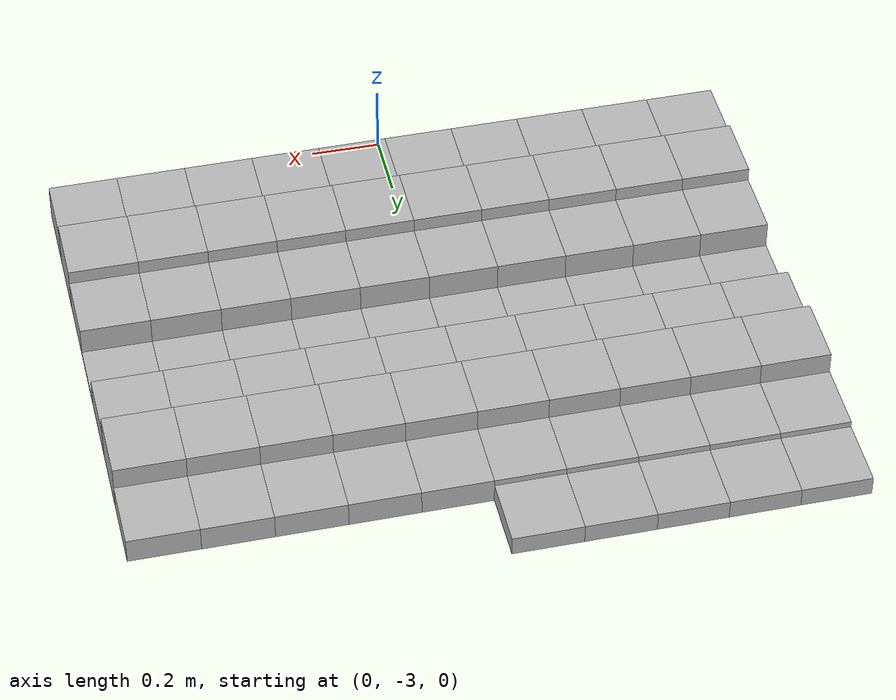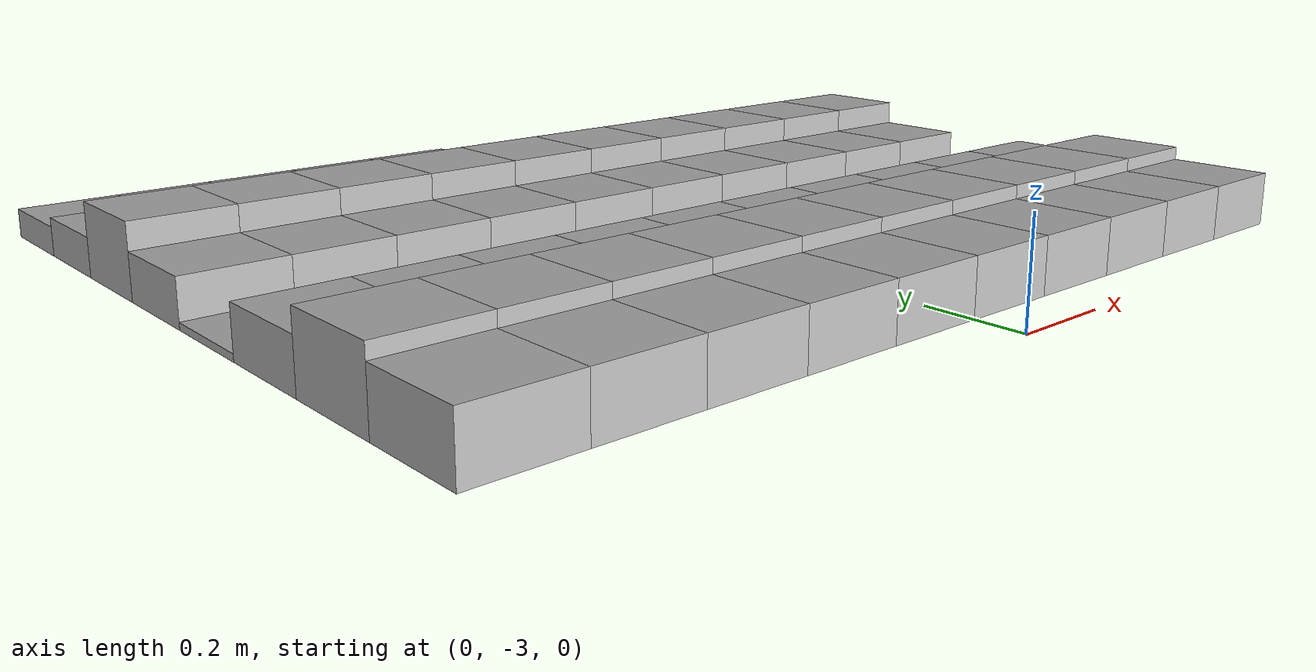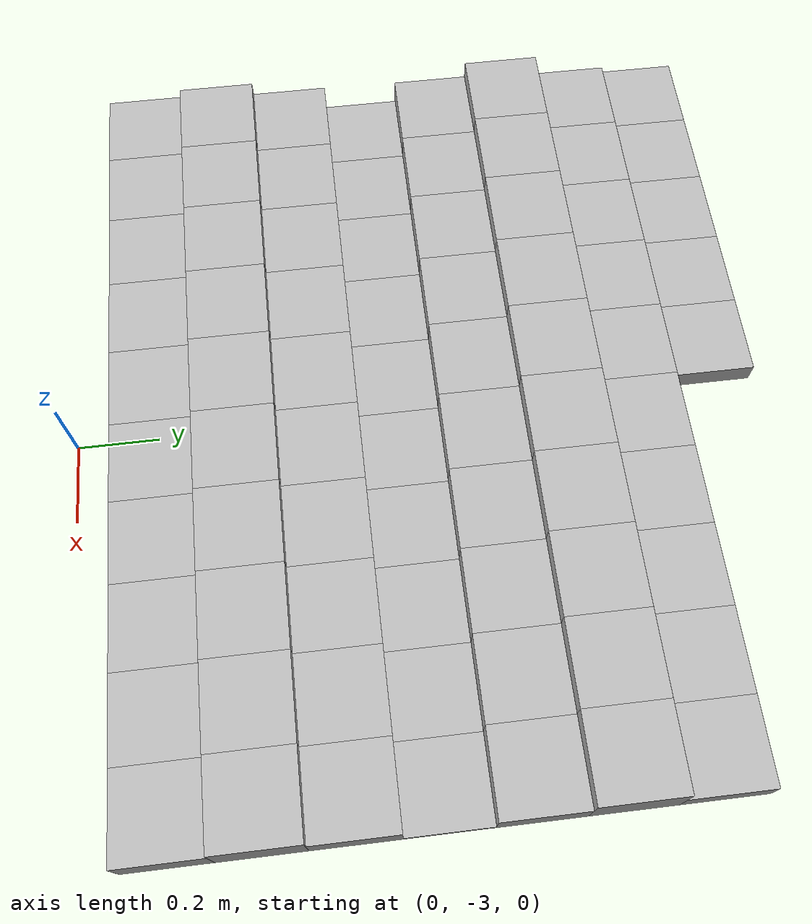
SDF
<sdf version="1.6">
 <model name="Terrain">
  <static>true</static>
  <link name="box_7_0">
   <pose>-0.9 -1.4 0.0288530156352 0 0 0</pose>
   <inertial>
    <mass>1.0</mass>
    <inertia><ixx>0.0</ixx><ixy>0.0</ixy><ixz>0.0</ixz><iyy>0.0</iyy><iyz>0.0</iyz><izz>0.0</izz></inertia>
   </inertial>
   <collision name="collision"><geometry><box><size>0.2 0.2 0.0577060312703</size></box></geometry></collision>
   <visual name="visual"><geometry><box><size>0.2 0.2 0.0577060312703</size></box></geometry></visual>
  </link>
  <link name="box_7_1">
   <pose>-0.7 -1.4 0.0288530156352 0 0 0</pose>
   <inertial>
    <mass>1.0</mass>
    <inertia><ixx>0.0</ixx><ixy>0.0</ixy><ixz>0.0</ixz><iyy>0.0</iyy><iyz>0.0</iyz><izz>0.0</izz></inertia>
   </inertial>
   <collision name="collision"><geometry><box><size>0.2 0.2 0.0577060312703</size></box></geometry></collision>
   <visual name="visual"><geometry><box><size>0.2 0.2 0.0577060312703</size></box></geometry></visual>
  </link>
  <link name="box_7_2">
   <pose>-0.5 -1.4 0.0288530156352 0 0 0</pose>
   <inertial>
    <mass>1.0</mass>
    <inertia><ixx>0.0</ixx><ixy>0.0</ixy><ixz>0.0</ixz><iyy>0.0</iyy><iyz>0.0</iyz><izz>0.0</izz></inertia>
   </inertial>
   <collision name="collision"><geometry><box><size>0.2 0.2 0.0577060312703</size></box></geometry></collision>
   <visual name="visual"><geometry><box><size>0.2 0.2 0.0577060312703</size></box></geometry></visual>
  </link>
  <link name="box_7_3">
   <pose>-0.3 -1.4 0.0288530156352 0 0 0</pose>
   <inertial>
    <mass>1.0</mass>
    <inertia><ixx>0.0</ixx><ixy>0.0</ixy><ixz>0.0</ixz><iyy>0.0</iyy><iyz>0.0</iyz><izz>0.0</izz></inertia>
   </inertial>
   <collision name="collision"><geometry><box><size>0.2 0.2 0.0577060312703</size></box></geometry></collision>
   <visual name="visual"><geometry><box><size>0.2 0.2 0.0577060312703</size></box></geometry></visual>
  </link>
  <link name="box_7_4">
   <pose>-0.1 -1.4 0.0288530156352 0 0 0</pose>
   <inertial>
    <mass>1.0</mass>
    <inertia><ixx>0.0</ixx><ixy>0.0</ixy><ixz>0.0</ixz><iyy>0.0</iyy><iyz>0.0</iyz><izz>0.0</izz></inertia>
   </inertial>
   <collision name="collision"><geometry><box><size>0.2 0.2 0.0577060312703</size></box></geometry></collision>
   <visual name="visual"><geometry><box><size>0.2 0.2 0.0577060312703</size></box></geometry></visual>
  </link>
  <link name="box_8_0">
   <pose>-0.9 -1.6 0.0380230738048 0 0 0</pose>
   <inertial>
    <mass>1.0</mass>
    <inertia><ixx>0.0</ixx><ixy>0.0</ixy><ixz>0.0</ixz><iyy>0.0</iyy><iyz>0.0</iyz><izz>0.0</izz></inertia>
   </inertial>
   <collision name="collision"><geometry><box><size>0.2 0.2 0.0760461476095</size></box></geometry></collision>
   <visual name="visual"><geometry><box><size>0.2 0.2 0.0760461476095</size></box></geometry></visual>
  </link>
  <link name="box_8_1">
   <pose>-0.7 -1.6 0.0380230738048 0 0 0</pose>
   <inertial>
    <mass>1.0</mass>
    <inertia><ixx>0.0</ixx><ixy>0.0</ixy><ixz>0.0</ixz><iyy>0.0</iyy><iyz>0.0</iyz><izz>0.0</izz></inertia>
   </inertial>
   <collision name="collision"><geometry><box><size>0.2 0.2 0.0760461476095</size></box></geometry></collision>
   <visual name="visual"><geometry><box><size>0.2 0.2 0.0760461476095</size></box></geometry></visual>
  </link>
  <link name="box_8_2">
   <pose>-0.5 -1.6 0.0380230738048 0 0 0</pose>
   <inertial>
    <mass>1.0</mass>
    <inertia><ixx>0.0</ixx><ixy>0.0</ixy><ixz>0.0</ixz><iyy>0.0</iyy><iyz>0.0</iyz><izz>0.0</izz></inertia>
   </inertial>
   <collision name="collision"><geometry><box><size>0.2 0.2 0.0760461476095</size></box></geometry></collision>
   <visual name="visual"><geometry><box><size>0.2 0.2 0.0760461476095</size></box></geometry></visual>
  </link>
  <link name="box_8_3">
   <pose>-0.3 -1.6 0.0380230738048 0 0 0</pose>
   <inertial>
    <mass>1.0</mass>
    <inertia><ixx>0.0</ixx><ixy>0.0</ixy><ixz>0.0</ixz><iyy>0.0</iyy><iyz>0.0</iyz><izz>0.0</izz></inertia>
   </inertial>
   <collision name="collision"><geometry><box><size>0.2 0.2 0.0760461476095</size></box></geometry></collision>
   <visual name="visual"><geometry><box><size>0.2 0.2 0.0760461476095</size></box></geometry></visual>
  </link>
  <link name="box_8_4">
   <pose>-0.1 -1.6 0.0380230738048 0 0 0</pose>
   <inertial>
    <mass>1.0</mass>
    <inertia><ixx>0.0</ixx><ixy>0.0</ixy><ixz>0.0</ixz><iyy>0.0</iyy><iyz>0.0</iyz><izz>0.0</izz></inertia>
   </inertial>
   <collision name="collision"><geometry><box><size>0.2 0.2 0.0760461476095</size></box></geometry></collision>
   <visual name="visual"><geometry><box><size>0.2 0.2 0.0760461476095</size></box></geometry></visual>
  </link>
  <link name="box_8_5">
   <pose>0.1 -1.6 0.0380230738048 0 0 0</pose>
   <inertial>
    <mass>1.0</mass>
    <inertia><ixx>0.0</ixx><ixy>0.0</ixy><ixz>0.0</ixz><iyy>0.0</iyy><iyz>0.0</iyz><izz>0.0</izz></inertia>
   </inertial>
   <collision name="collision"><geometry><box><size>0.2 0.2 0.0760461476095</size></box></geometry></collision>
   <visual name="visual"><geometry><box><size>0.2 0.2 0.0760461476095</size></box></geometry></visual>
  </link>
  <link name="box_8_6">
   <pose>0.3 -1.6 0.0380230738048 0 0 0</pose>
   <inertial>
    <mass>1.0</mass>
    <inertia><ixx>0.0</ixx><ixy>0.0</ixy><ixz>0.0</ixz><iyy>0.0</iyy><iyz>0.0</iyz><izz>0.0</izz></inertia>
   </inertial>
   <collision name="collision"><geometry><box><size>0.2 0.2 0.0760461476095</size></box></geometry></collision>
   <visual name="visual"><geometry><box><size>0.2 0.2 0.0760461476095</size></box></geometry></visual>
  </link>
  <link name="box_8_7">
   <pose>0.5 -1.6 0.0380230738048 0 0 0</pose>
   <inertial>
    <mass>1.0</mass>
    <inertia><ixx>0.0</ixx><ixy>0.0</ixy><ixz>0.0</ixz><iyy>0.0</iyy><iyz>0.0</iyz><izz>0.0</izz></inertia>
   </inertial>
   <collision name="collision"><geometry><box><size>0.2 0.2 0.0760461476095</size></box></geometry></collision>
   <visual name="visual"><geometry><box><size>0.2 0.2 0.0760461476095</size></box></geometry></visual>
  </link>
  <link name="box_8_8">
   <pose>0.7 -1.6 0.0380230738048 0 0 0</pose>
   <inertial>
    <mass>1.0</mass>
    <inertia><ixx>0.0</ixx><ixy>0.0</ixy><ixz>0.0</ixz><iyy>0.0</iyy><iyz>0.0</iyz><izz>0.0</izz></inertia>
   </inertial>
   <collision name="collision"><geometry><box><size>0.2 0.2 0.0760461476095</size></box></geometry></collision>
   <visual name="visual"><geometry><box><size>0.2 0.2 0.0760461476095</size></box></geometry></visual>
  </link>
  <link name="box_8_9">
   <pose>0.9 -1.6 0.0380230738048 0 0 0</pose>
   <inertial>
    <mass>1.0</mass>
    <inertia><ixx>0.0</ixx><ixy>0.0</ixy><ixz>0.0</ixz><iyy>0.0</iyy><iyz>0.0</iyz><izz>0.0</izz></inertia>
   </inertial>
   <collision name="collision"><geometry><box><size>0.2 0.2 0.0760461476095</size></box></geometry></collision>
   <visual name="visual"><geometry><box><size>0.2 0.2 0.0760461476095</size></box></geometry></visual>
  </link>
  <link name="box_9_0">
   <pose>-0.9 -1.8 0.0711643060748 0 0 0</pose>
   <inertial>
    <mass>1.0</mass>
    <inertia><ixx>0.0</ixx><ixy>0.0</ixy><ixz>0.0</ixz><iyy>0.0</iyy><iyz>0.0</iyz><izz>0.0</izz></inertia>
   </inertial>
   <collision name="collision"><geometry><box><size>0.2 0.2 0.14232861215</size></box></geometry></collision>
   <visual name="visual"><geometry><box><size>0.2 0.2 0.14232861215</size></box></geometry></visual>
  </link>
  <link name="box_9_1">
   <pose>-0.7 -1.8 0.0711643060748 0 0 0</pose>
   <inertial>
    <mass>1.0</mass>
    <inertia><ixx>0.0</ixx><ixy>0.0</ixy><ixz>0.0</ixz><iyy>0.0</iyy><iyz>0.0</iyz><izz>0.0</izz></inertia>
   </inertial>
   <collision name="collision"><geometry><box><size>0.2 0.2 0.14232861215</size></box></geometry></collision>
   <visual name="visual"><geometry><box><size>0.2 0.2 0.14232861215</size></box></geometry></visual>
  </link>
  <link name="box_9_2">
   <pose>-0.5 -1.8 0.0711643060748 0 0 0</pose>
   <inertial>
    <mass>1.0</mass>
    <inertia><ixx>0.0</ixx><ixy>0.0</ixy><ixz>0.0</ixz><iyy>0.0</iyy><iyz>0.0</iyz><izz>0.0</izz></inertia>
   </inertial>
   <collision name="collision"><geometry><box><size>0.2 0.2 0.14232861215</size></box></geometry></collision>
   <visual name="visual"><geometry><box><size>0.2 0.2 0.14232861215</size></box></geometry></visual>
  </link>
  <link name="box_9_3">
   <pose>-0.3 -1.8 0.0711643060748 0 0 0</pose>
   <inertial>
    <mass>1.0</mass>
    <inertia><ixx>0.0</ixx><ixy>0.0</ixy><ixz>0.0</ixz><iyy>0.0</iyy><iyz>0.0</iyz><izz>0.0</izz></inertia>
   </inertial>
   <collision name="collision"><geometry><box><size>0.2 0.2 0.14232861215</size></box></geometry></collision>
   <visual name="visual"><geometry><box><size>0.2 0.2 0.14232861215</size></box></geometry></visual>
  </link>
  <link name="box_9_4">
   <pose>-0.1 -1.8 0.0711643060748 0 0 0</pose>
   <inertial>
    <mass>1.0</mass>
    <inertia><ixx>0.0</ixx><ixy>0.0</ixy><ixz>0.0</ixz><iyy>0.0</iyy><iyz>0.0</iyz><izz>0.0</izz></inertia>
   </inertial>
   <collision name="collision"><geometry><box><size>0.2 0.2 0.14232861215</size></box></geometry></collision>
   <visual name="visual"><geometry><box><size>0.2 0.2 0.14232861215</size></box></geometry></visual>
  </link>
  <link name="box_9_5">
   <pose>0.1 -1.8 0.0711643060748 0 0 0</pose>
   <inertial>
    <mass>1.0</mass>
    <inertia><ixx>0.0</ixx><ixy>0.0</ixy><ixz>0.0</ixz><iyy>0.0</iyy><iyz>0.0</iyz><izz>0.0</izz></inertia>
   </inertial>
   <collision name="collision"><geometry><box><size>0.2 0.2 0.14232861215</size></box></geometry></collision>
   <visual name="visual"><geometry><box><size>0.2 0.2 0.14232861215</size></box></geometry></visual>
  </link>
  <link name="box_9_6">
   <pose>0.3 -1.8 0.0711643060748 0 0 0</pose>
   <inertial>
    <mass>1.0</mass>
    <inertia><ixx>0.0</ixx><ixy>0.0</ixy><ixz>0.0</ixz><iyy>0.0</iyy><iyz>0.0</iyz><izz>0.0</izz></inertia>
   </inertial>
   <collision name="collision"><geometry><box><size>0.2 0.2 0.14232861215</size></box></geometry></collision>
   <visual name="visual"><geometry><box><size>0.2 0.2 0.14232861215</size></box></geometry></visual>
  </link>
  <link name="box_9_7">
   <pose>0.5 -1.8 0.0711643060748 0 0 0</pose>
   <inertial>
    <mass>1.0</mass>
    <inertia><ixx>0.0</ixx><ixy>0.0</ixy><ixz>0.0</ixz><iyy>0.0</iyy><iyz>0.0</iyz><izz>0.0</izz></inertia>
   </inertial>
   <collision name="collision"><geometry><box><size>0.2 0.2 0.14232861215</size></box></geometry></collision>
   <visual name="visual"><geometry><box><size>0.2 0.2 0.14232861215</size></box></geometry></visual>
  </link>
  <link name="box_9_8">
   <pose>0.7 -1.8 0.0711643060748 0 0 0</pose>
   <inertial>
    <mass>1.0</mass>
    <inertia><ixx>0.0</ixx><ixy>0.0</ixy><ixz>0.0</ixz><iyy>0.0</iyy><iyz>0.0</iyz><izz>0.0</izz></inertia>
   </inertial>
   <collision name="collision"><geometry><box><size>0.2 0.2 0.14232861215</size></box></geometry></collision>
   <visual name="visual"><geometry><box><size>0.2 0.2 0.14232861215</size></box></geometry></visual>
  </link>
  <link name="box_9_9">
   <pose>0.9 -1.8 0.0711643060748 0 0 0</pose>
   <inertial>
    <mass>1.0</mass>
    <inertia><ixx>0.0</ixx><ixy>0.0</ixy><ixz>0.0</ixz><iyy>0.0</iyy><iyz>0.0</iyz><izz>0.0</izz></inertia>
   </inertial>
   <collision name="collision"><geometry><box><size>0.2 0.2 0.14232861215</size></box></geometry></collision>
   <visual name="visual"><geometry><box><size>0.2 0.2 0.14232861215</size></box></geometry></visual>
  </link>
  <link name="box_10_0">
   <pose>-0.9 -2.0 0.0448267255132 0 0 0</pose>
   <inertial>
    <mass>1.0</mass>
    <inertia><ixx>0.0</ixx><ixy>0.0</ixy><ixz>0.0</ixz><iyy>0.0</iyy><iyz>0.0</iyz><izz>0.0</izz></inertia>
   </inertial>
   <collision name="collision"><geometry><box><size>0.2 0.2 0.0896534510264</size></box></geometry></collision>
   <visual name="visual"><geometry><box><size>0.2 0.2 0.0896534510264</size></box></geometry></visual>
  </link>
  <link name="box_10_1">
   <pose>-0.7 -2.0 0.0448267255132 0 0 0</pose>
   <inertial>
    <mass>1.0</mass>
    <inertia><ixx>0.0</ixx><ixy>0.0</ixy><ixz>0.0</ixz><iyy>0.0</iyy><iyz>0.0</iyz><izz>0.0</izz></inertia>
   </inertial>
   <collision name="collision"><geometry><box><size>0.2 0.2 0.0896534510264</size></box></geometry></collision>
   <visual name="visual"><geometry><box><size>0.2 0.2 0.0896534510264</size></box></geometry></visual>
  </link>
  <link name="box_10_2">
   <pose>-0.5 -2.0 0.0448267255132 0 0 0</pose>
   <inertial>
    <mass>1.0</mass>
    <inertia><ixx>0.0</ixx><ixy>0.0</ixy><ixz>0.0</ixz><iyy>0.0</iyy><iyz>0.0</iyz><izz>0.0</izz></inertia>
   </inertial>
   <collision name="collision"><geometry><box><size>0.2 0.2 0.0896534510264</size></box></geometry></collision>
   <visual name="visual"><geometry><box><size>0.2 0.2 0.0896534510264</size></box></geometry></visual>
  </link>
  <link name="box_10_3">
   <pose>-0.3 -2.0 0.0448267255132 0 0 0</pose>
   <inertial>
    <mass>1.0</mass>
    <inertia><ixx>0.0</ixx><ixy>0.0</ixy><ixz>0.0</ixz><iyy>0.0</iyy><iyz>0.0</iyz><izz>0.0</izz></inertia>
   </inertial>
   <collision name="collision"><geometry><box><size>0.2 0.2 0.0896534510264</size></box></geometry></collision>
   <visual name="visual"><geometry><box><size>0.2 0.2 0.0896534510264</size></box></geometry></visual>
  </link>
  <link name="box_10_4">
   <pose>-0.1 -2.0 0.0448267255132 0 0 0</pose>
   <inertial>
    <mass>1.0</mass>
    <inertia><ixx>0.0</ixx><ixy>0.0</ixy><ixz>0.0</ixz><iyy>0.0</iyy><iyz>0.0</iyz><izz>0.0</izz></inertia>
   </inertial>
   <collision name="collision"><geometry><box><size>0.2 0.2 0.0896534510264</size></box></geometry></collision>
   <visual name="visual"><geometry><box><size>0.2 0.2 0.0896534510264</size></box></geometry></visual>
  </link>
  <link name="box_10_5">
   <pose>0.1 -2.0 0.0448267255132 0 0 0</pose>
   <inertial>
    <mass>1.0</mass>
    <inertia><ixx>0.0</ixx><ixy>0.0</ixy><ixz>0.0</ixz><iyy>0.0</iyy><iyz>0.0</iyz><izz>0.0</izz></inertia>
   </inertial>
   <collision name="collision"><geometry><box><size>0.2 0.2 0.0896534510264</size></box></geometry></collision>
   <visual name="visual"><geometry><box><size>0.2 0.2 0.0896534510264</size></box></geometry></visual>
  </link>
  <link name="box_10_6">
   <pose>0.3 -2.0 0.0448267255132 0 0 0</pose>
   <inertial>
    <mass>1.0</mass>
    <inertia><ixx>0.0</ixx><ixy>0.0</ixy><ixz>0.0</ixz><iyy>0.0</iyy><iyz>0.0</iyz><izz>0.0</izz></inertia>
   </inertial>
   <collision name="collision"><geometry><box><size>0.2 0.2 0.0896534510264</size></box></geometry></collision>
   <visual name="visual"><geometry><box><size>0.2 0.2 0.0896534510264</size></box></geometry></visual>
  </link>
  <link name="box_10_7">
   <pose>0.5 -2.0 0.0448267255132 0 0 0</pose>
   <inertial>
    <mass>1.0</mass>
    <inertia><ixx>0.0</ixx><ixy>0.0</ixy><ixz>0.0</ixz><iyy>0.0</iyy><iyz>0.0</iyz><izz>0.0</izz></inertia>
   </inertial>
   <collision name="collision"><geometry><box><size>0.2 0.2 0.0896534510264</size></box></geometry></collision>
   <visual name="visual"><geometry><box><size>0.2 0.2 0.0896534510264</size></box></geometry></visual>
  </link>
  <link name="box_10_8">
   <pose>0.7 -2.0 0.0448267255132 0 0 0</pose>
   <inertial>
    <mass>1.0</mass>
    <inertia><ixx>0.0</ixx><ixy>0.0</ixy><ixz>0.0</ixz><iyy>0.0</iyy><iyz>0.0</iyz><izz>0.0</izz></inertia>
   </inertial>
   <collision name="collision"><geometry><box><size>0.2 0.2 0.0896534510264</size></box></geometry></collision>
   <visual name="visual"><geometry><box><size>0.2 0.2 0.0896534510264</size></box></geometry></visual>
  </link>
  <link name="box_10_9">
   <pose>0.9 -2.0 0.0448267255132 0 0 0</pose>
   <inertial>
    <mass>1.0</mass>
    <inertia><ixx>0.0</ixx><ixy>0.0</ixy><ixz>0.0</ixz><iyy>0.0</iyy><iyz>0.0</iyz><izz>0.0</izz></inertia>
   </inertial>
   <collision name="collision"><geometry><box><size>0.2 0.2 0.0896534510264</size></box></geometry></collision>
   <visual name="visual"><geometry><box><size>0.2 0.2 0.0896534510264</size></box></geometry></visual>
  </link>
  <link name="box_11_0">
   <pose>-0.9 -2.2 0.00673364602555 0 0 0</pose>
   <inertial>
    <mass>1.0</mass>
    <inertia><ixx>0.0</ixx><ixy>0.0</ixy><ixz>0.0</ixz><iyy>0.0</iyy><iyz>0.0</iyz><izz>0.0</izz></inertia>
   </inertial>
   <collision name="collision"><geometry><box><size>0.2 0.2 0.0134672920511</size></box></geometry></collision>
   <visual name="visual"><geometry><box><size>0.2 0.2 0.0134672920511</size></box></geometry></visual>
  </link>
  <link name="box_11_1">
   <pose>-0.7 -2.2 0.00673364602555 0 0 0</pose>
   <inertial>
    <mass>1.0</mass>
    <inertia><ixx>0.0</ixx><ixy>0.0</ixy><ixz>0.0</ixz><iyy>0.0</iyy><iyz>0.0</iyz><izz>0.0</izz></inertia>
   </inertial>
   <collision name="collision"><geometry><box><size>0.2 0.2 0.0134672920511</size></box></geometry></collision>
   <visual name="visual"><geometry><box><size>0.2 0.2 0.0134672920511</size></box></geometry></visual>
  </link>
  <link name="box_11_2">
   <pose>-0.5 -2.2 0.00673364602555 0 0 0</pose>
   <inertial>
    <mass>1.0</mass>
    <inertia><ixx>0.0</ixx><ixy>0.0</ixy><ixz>0.0</ixz><iyy>0.0</iyy><iyz>0.0</iyz><izz>0.0</izz></inertia>
   </inertial>
   <collision name="collision"><geometry><box><size>0.2 0.2 0.0134672920511</size></box></geometry></collision>
   <visual name="visual"><geometry><box><size>0.2 0.2 0.0134672920511</size></box></geometry></visual>
  </link>
  <link name="box_11_3">
   <pose>-0.3 -2.2 0.00673364602555 0 0 0</pose>
   <inertial>
    <mass>1.0</mass>
    <inertia><ixx>0.0</ixx><ixy>0.0</ixy><ixz>0.0</ixz><iyy>0.0</iyy><iyz>0.0</iyz><izz>0.0</izz></inertia>
   </inertial>
   <collision name="collision"><geometry><box><size>0.2 0.2 0.0134672920511</size></box></geometry></collision>
   <visual name="visual"><geometry><box><size>0.2 0.2 0.0134672920511</size></box></geometry></visual>
  </link>
  <link name="box_11_4">
   <pose>-0.1 -2.2 0.00673364602555 0 0 0</pose>
   <inertial>
    <mass>1.0</mass>
    <inertia><ixx>0.0</ixx><ixy>0.0</ixy><ixz>0.0</ixz><iyy>0.0</iyy><iyz>0.0</iyz><izz>0.0</izz></inertia>
   </inertial>
   <collision name="collision"><geometry><box><size>0.2 0.2 0.0134672920511</size></box></geometry></collision>
   <visual name="visual"><geometry><box><size>0.2 0.2 0.0134672920511</size></box></geometry></visual>
  </link>
  <link name="box_11_5">
   <pose>0.1 -2.2 0.00673364602555 0 0 0</pose>
   <inertial>
    <mass>1.0</mass>
    <inertia><ixx>0.0</ixx><ixy>0.0</ixy><ixz>0.0</ixz><iyy>0.0</iyy><iyz>0.0</iyz><izz>0.0</izz></inertia>
   </inertial>
   <collision name="collision"><geometry><box><size>0.2 0.2 0.0134672920511</size></box></geometry></collision>
   <visual name="visual"><geometry><box><size>0.2 0.2 0.0134672920511</size></box></geometry></visual>
  </link>
  <link name="box_11_6">
   <pose>0.3 -2.2 0.00673364602555 0 0 0</pose>
   <inertial>
    <mass>1.0</mass>
    <inertia><ixx>0.0</ixx><ixy>0.0</ixy><ixz>0.0</ixz><iyy>0.0</iyy><iyz>0.0</iyz><izz>0.0</izz></inertia>
   </inertial>
   <collision name="collision"><geometry><box><size>0.2 0.2 0.0134672920511</size></box></geometry></collision>
   <visual name="visual"><geometry><box><size>0.2 0.2 0.0134672920511</size></box></geometry></visual>
  </link>
  <link name="box_11_7">
   <pose>0.5 -2.2 0.00673364602555 0 0 0</pose>
   <inertial>
    <mass>1.0</mass>
    <inertia><ixx>0.0</ixx><ixy>0.0</ixy><ixz>0.0</ixz><iyy>0.0</iyy><iyz>0.0</iyz><izz>0.0</izz></inertia>
   </inertial>
   <collision name="collision"><geometry><box><size>0.2 0.2 0.0134672920511</size></box></geometry></collision>
   <visual name="visual"><geometry><box><size>0.2 0.2 0.0134672920511</size></box></geometry></visual>
  </link>
  <link name="box_11_8">
   <pose>0.7 -2.2 0.00673364602555 0 0 0</pose>
   <inertial>
    <mass>1.0</mass>
    <inertia><ixx>0.0</ixx><ixy>0.0</ixy><ixz>0.0</ixz><iyy>0.0</iyy><iyz>0.0</iyz><izz>0.0</izz></inertia>
   </inertial>
   <collision name="collision"><geometry><box><size>0.2 0.2 0.0134672920511</size></box></geometry></collision>
   <visual name="visual"><geometry><box><size>0.2 0.2 0.0134672920511</size></box></geometry></visual>
  </link>
  <link name="box_11_9">
   <pose>0.9 -2.2 0.00673364602555 0 0 0</pose>
   <inertial>
    <mass>1.0</mass>
    <inertia><ixx>0.0</ixx><ixy>0.0</ixy><ixz>0.0</ixz><iyy>0.0</iyy><iyz>0.0</iyz><izz>0.0</izz></inertia>
   </inertial>
   <collision name="collision"><geometry><box><size>0.2 0.2 0.0134672920511</size></box></geometry></collision>
   <visual name="visual"><geometry><box><size>0.2 0.2 0.0134672920511</size></box></geometry></visual>
  </link>
  <link name="box_12_0">
   <pose>-0.9 -2.4 0.0473501525472 0 0 0</pose>
   <inertial>
    <mass>1.0</mass>
    <inertia><ixx>0.0</ixx><ixy>0.0</ixy><ixz>0.0</ixz><iyy>0.0</iyy><iyz>0.0</iyz><izz>0.0</izz></inertia>
   </inertial>
   <collision name="collision"><geometry><box><size>0.2 0.2 0.0947003050944</size></box></geometry></collision>
   <visual name="visual"><geometry><box><size>0.2 0.2 0.0947003050944</size></box></geometry></visual>
  </link>
  <link name="box_12_1">
   <pose>-0.7 -2.4 0.0473501525472 0 0 0</pose>
   <inertial>
    <mass>1.0</mass>
    <inertia><ixx>0.0</ixx><ixy>0.0</ixy><ixz>0.0</ixz><iyy>0.0</iyy><iyz>0.0</iyz><izz>0.0</izz></inertia>
   </inertial>
   <collision name="collision"><geometry><box><size>0.2 0.2 0.0947003050944</size></box></geometry></collision>
   <visual name="visual"><geometry><box><size>0.2 0.2 0.0947003050944</size></box></geometry></visual>
  </link>
  <link name="box_12_2">
   <pose>-0.5 -2.4 0.0473501525472 0 0 0</pose>
   <inertial>
    <mass>1.0</mass>
    <inertia><ixx>0.0</ixx><ixy>0.0</ixy><ixz>0.0</ixz><iyy>0.0</iyy><iyz>0.0</iyz><izz>0.0</izz></inertia>
   </inertial>
   <collision name="collision"><geometry><box><size>0.2 0.2 0.0947003050944</size></box></geometry></collision>
   <visual name="visual"><geometry><box><size>0.2 0.2 0.0947003050944</size></box></geometry></visual>
  </link>
  <link name="box_12_3">
   <pose>-0.3 -2.4 0.0473501525472 0 0 0</pose>
   <inertial>
    <mass>1.0</mass>
    <inertia><ixx>0.0</ixx><ixy>0.0</ixy><ixz>0.0</ixz><iyy>0.0</iyy><iyz>0.0</iyz><izz>0.0</izz></inertia>
   </inertial>
   <collision name="collision"><geometry><box><size>0.2 0.2 0.0947003050944</size></box></geometry></collision>
   <visual name="visual"><geometry><box><size>0.2 0.2 0.0947003050944</size></box></geometry></visual>
  </link>
  <link name="box_12_4">
   <pose>-0.1 -2.4 0.0473501525472 0 0 0</pose>
   <inertial>
    <mass>1.0</mass>
    <inertia><ixx>0.0</ixx><ixy>0.0</ixy><ixz>0.0</ixz><iyy>0.0</iyy><iyz>0.0</iyz><izz>0.0</izz></inertia>
   </inertial>
   <collision name="collision"><geometry><box><size>0.2 0.2 0.0947003050944</size></box></geometry></collision>
   <visual name="visual"><geometry><box><size>0.2 0.2 0.0947003050944</size></box></geometry></visual>
  </link>
  <link name="box_12_5">
   <pose>0.1 -2.4 0.0473501525472 0 0 0</pose>
   <inertial>
    <mass>1.0</mass>
    <inertia><ixx>0.0</ixx><ixy>0.0</ixy><ixz>0.0</ixz><iyy>0.0</iyy><iyz>0.0</iyz><izz>0.0</izz></inertia>
   </inertial>
   <collision name="collision"><geometry><box><size>0.2 0.2 0.0947003050944</size></box></geometry></collision>
   <visual name="visual"><geometry><box><size>0.2 0.2 0.0947003050944</size></box></geometry></visual>
  </link>
  <link name="box_12_6">
   <pose>0.3 -2.4 0.0473501525472 0 0 0</pose>
   <inertial>
    <mass>1.0</mass>
    <inertia><ixx>0.0</ixx><ixy>0.0</ixy><ixz>0.0</ixz><iyy>0.0</iyy><iyz>0.0</iyz><izz>0.0</izz></inertia>
   </inertial>
   <collision name="collision"><geometry><box><size>0.2 0.2 0.0947003050944</size></box></geometry></collision>
   <visual name="visual"><geometry><box><size>0.2 0.2 0.0947003050944</size></box></geometry></visual>
  </link>
  <link name="box_12_7">
   <pose>0.5 -2.4 0.0473501525472 0 0 0</pose>
   <inertial>
    <mass>1.0</mass>
    <inertia><ixx>0.0</ixx><ixy>0.0</ixy><ixz>0.0</ixz><iyy>0.0</iyy><iyz>0.0</iyz><izz>0.0</izz></inertia>
   </inertial>
   <collision name="collision"><geometry><box><size>0.2 0.2 0.0947003050944</size></box></geometry></collision>
   <visual name="visual"><geometry><box><size>0.2 0.2 0.0947003050944</size></box></geometry></visual>
  </link>
  <link name="box_12_8">
   <pose>0.7 -2.4 0.0473501525472 0 0 0</pose>
   <inertial>
    <mass>1.0</mass>
    <inertia><ixx>0.0</ixx><ixy>0.0</ixy><ixz>0.0</ixz><iyy>0.0</iyy><iyz>0.0</iyz><izz>0.0</izz></inertia>
   </inertial>
   <collision name="collision"><geometry><box><size>0.2 0.2 0.0947003050944</size></box></geometry></collision>
   <visual name="visual"><geometry><box><size>0.2 0.2 0.0947003050944</size></box></geometry></visual>
  </link>
  <link name="box_12_9">
   <pose>0.9 -2.4 0.0473501525472 0 0 0</pose>
   <inertial>
    <mass>1.0</mass>
    <inertia><ixx>0.0</ixx><ixy>0.0</ixy><ixz>0.0</ixz><iyy>0.0</iyy><iyz>0.0</iyz><izz>0.0</izz></inertia>
   </inertial>
   <collision name="collision"><geometry><box><size>0.2 0.2 0.0947003050944</size></box></geometry></collision>
   <visual name="visual"><geometry><box><size>0.2 0.2 0.0947003050944</size></box></geometry></visual>
  </link>
  <link name="box_13_0">
   <pose>-0.9 -2.6 0.0681527038108 0 0 0</pose>
   <inertial>
    <mass>1.0</mass>
    <inertia><ixx>0.0</ixx><ixy>0.0</ixy><ixz>0.0</ixz><iyy>0.0</iyy><iyz>0.0</iyz><izz>0.0</izz></inertia>
   </inertial>
   <collision name="collision"><geometry><box><size>0.2 0.2 0.136305407622</size></box></geometry></collision>
   <visual name="visual"><geometry><box><size>0.2 0.2 0.136305407622</size></box></geometry></visual>
  </link>
  <link name="box_13_1">
   <pose>-0.7 -2.6 0.0681527038108 0 0 0</pose>
   <inertial>
    <mass>1.0</mass>
    <inertia><ixx>0.0</ixx><ixy>0.0</ixy><ixz>0.0</ixz><iyy>0.0</iyy><iyz>0.0</iyz><izz>0.0</izz></inertia>
   </inertial>
   <collision name="collision"><geometry><box><size>0.2 0.2 0.136305407622</size></box></geometry></collision>
   <visual name="visual"><geometry><box><size>0.2 0.2 0.136305407622</size></box></geometry></visual>
  </link>
  <link name="box_13_2">
   <pose>-0.5 -2.6 0.0681527038108 0 0 0</pose>
   <inertial>
    <mass>1.0</mass>
    <inertia><ixx>0.0</ixx><ixy>0.0</ixy><ixz>0.0</ixz><iyy>0.0</iyy><iyz>0.0</iyz><izz>0.0</izz></inertia>
   </inertial>
   <collision name="collision"><geometry><box><size>0.2 0.2 0.136305407622</size></box></geometry></collision>
   <visual name="visual"><geometry><box><size>0.2 0.2 0.136305407622</size></box></geometry></visual>
  </link>
  <link name="box_13_3">
   <pose>-0.3 -2.6 0.0681527038108 0 0 0</pose>
   <inertial>
    <mass>1.0</mass>
    <inertia><ixx>0.0</ixx><ixy>0.0</ixy><ixz>0.0</ixz><iyy>0.0</iyy><iyz>0.0</iyz><izz>0.0</izz></inertia>
   </inertial>
   <collision name="collision"><geometry><box><size>0.2 0.2 0.136305407622</size></box></geometry></collision>
   <visual name="visual"><geometry><box><size>0.2 0.2 0.136305407622</size></box></geometry></visual>
  </link>
  <link name="box_13_4">
   <pose>-0.1 -2.6 0.0681527038108 0 0 0</pose>
   <inertial>
    <mass>1.0</mass>
    <inertia><ixx>0.0</ixx><ixy>0.0</ixy><ixz>0.0</ixz><iyy>0.0</iyy><iyz>0.0</iyz><izz>0.0</izz></inertia>
   </inertial>
   <collision name="collision"><geometry><box><size>0.2 0.2 0.136305407622</size></box></geometry></collision>
   <visual name="visual"><geometry><box><size>0.2 0.2 0.136305407622</size></box></geometry></visual>
  </link>
  <link name="box_13_5">
   <pose>0.1 -2.6 0.0681527038108 0 0 0</pose>
   <inertial>
    <mass>1.0</mass>
    <inertia><ixx>0.0</ixx><ixy>0.0</ixy><ixz>0.0</ixz><iyy>0.0</iyy><iyz>0.0</iyz><izz>0.0</izz></inertia>
   </inertial>
   <collision name="collision"><geometry><box><size>0.2 0.2 0.136305407622</size></box></geometry></collision>
   <visual name="visual"><geometry><box><size>0.2 0.2 0.136305407622</size></box></geometry></visual>
  </link>
  <link name="box_13_6">
   <pose>0.3 -2.6 0.0681527038108 0 0 0</pose>
   <inertial>
    <mass>1.0</mass>
    <inertia><ixx>0.0</ixx><ixy>0.0</ixy><ixz>0.0</ixz><iyy>0.0</iyy><iyz>0.0</iyz><izz>0.0</izz></inertia>
   </inertial>
   <collision name="collision"><geometry><box><size>0.2 0.2 0.136305407622</size></box></geometry></collision>
   <visual name="visual"><geometry><box><size>0.2 0.2 0.136305407622</size></box></geometry></visual>
  </link>
  <link name="box_13_7">
   <pose>0.5 -2.6 0.0681527038108 0 0 0</pose>
   <inertial>
    <mass>1.0</mass>
    <inertia><ixx>0.0</ixx><ixy>0.0</ixy><ixz>0.0</ixz><iyy>0.0</iyy><iyz>0.0</iyz><izz>0.0</izz></inertia>
   </inertial>
   <collision name="collision"><geometry><box><size>0.2 0.2 0.136305407622</size></box></geometry></collision>
   <visual name="visual"><geometry><box><size>0.2 0.2 0.136305407622</size></box></geometry></visual>
  </link>
  <link name="box_13_8">
   <pose>0.7 -2.6 0.0681527038108 0 0 0</pose>
   <inertial>
    <mass>1.0</mass>
    <inertia><ixx>0.0</ixx><ixy>0.0</ixy><ixz>0.0</ixz><iyy>0.0</iyy><iyz>0.0</iyz><izz>0.0</izz></inertia>
   </inertial>
   <collision name="collision"><geometry><box><size>0.2 0.2 0.136305407622</size></box></geometry></collision>
   <visual name="visual"><geometry><box><size>0.2 0.2 0.136305407622</size></box></geometry></visual>
  </link>
  <link name="box_13_9">
   <pose>0.9 -2.6 0.0681527038108 0 0 0</pose>
   <inertial>
    <mass>1.0</mass>
    <inertia><ixx>0.0</ixx><ixy>0.0</ixy><ixz>0.0</ixz><iyy>0.0</iyy><iyz>0.0</iyz><izz>0.0</izz></inertia>
   </inertial>
   <collision name="collision"><geometry><box><size>0.2 0.2 0.136305407622</size></box></geometry></collision>
   <visual name="visual"><geometry><box><size>0.2 0.2 0.136305407622</size></box></geometry></visual>
  </link>
  <link name="box_14_0">
   <pose>-0.9 -2.8 0.0545494094513 0 0 0</pose>
   <inertial>
    <mass>1.0</mass>
    <inertia><ixx>0.0</ixx><ixy>0.0</ixy><ixz>0.0</ixz><iyy>0.0</iyy><iyz>0.0</iyz><izz>0.0</izz></inertia>
   </inertial>
   <collision name="collision"><geometry><box><size>0.2 0.2 0.109098818903</size></box></geometry></collision>
   <visual name="visual"><geometry><box><size>0.2 0.2 0.109098818903</size></box></geometry></visual>
  </link>
  <link name="box_14_1">
   <pose>-0.7 -2.8 0.0545494094513 0 0 0</pose>
   <inertial>
    <mass>1.0</mass>
    <inertia><ixx>0.0</ixx><ixy>0.0</ixy><ixz>0.0</ixz><iyy>0.0</iyy><iyz>0.0</iyz><izz>0.0</izz></inertia>
   </inertial>
   <collision name="collision"><geometry><box><size>0.2 0.2 0.109098818903</size></box></geometry></collision>
   <visual name="visual"><geometry><box><size>0.2 0.2 0.109098818903</size></box></geometry></visual>
  </link>
  <link name="box_14_2">
   <pose>-0.5 -2.8 0.0545494094513 0 0 0</pose>
   <inertial>
    <mass>1.0</mass>
    <inertia><ixx>0.0</ixx><ixy>0.0</ixy><ixz>0.0</ixz><iyy>0.0</iyy><iyz>0.0</iyz><izz>0.0</izz></inertia>
   </inertial>
   <collision name="collision"><geometry><box><size>0.2 0.2 0.109098818903</size></box></geometry></collision>
   <visual name="visual"><geometry><box><size>0.2 0.2 0.109098818903</size></box></geometry></visual>
  </link>
  <link name="box_14_3">
   <pose>-0.3 -2.8 0.0545494094513 0 0 0</pose>
   <inertial>
    <mass>1.0</mass>
    <inertia><ixx>0.0</ixx><ixy>0.0</ixy><ixz>0.0</ixz><iyy>0.0</iyy><iyz>0.0</iyz><izz>0.0</izz></inertia>
   </inertial>
   <collision name="collision"><geometry><box><size>0.2 0.2 0.109098818903</size></box></geometry></collision>
   <visual name="visual"><geometry><box><size>0.2 0.2 0.109098818903</size></box></geometry></visual>
  </link>
  <link name="box_14_4">
   <pose>-0.1 -2.8 0.0545494094513 0 0 0</pose>
   <inertial>
    <mass>1.0</mass>
    <inertia><ixx>0.0</ixx><ixy>0.0</ixy><ixz>0.0</ixz><iyy>0.0</iyy><iyz>0.0</iyz><izz>0.0</izz></inertia>
   </inertial>
   <collision name="collision"><geometry><box><size>0.2 0.2 0.109098818903</size></box></geometry></collision>
   <visual name="visual"><geometry><box><size>0.2 0.2 0.109098818903</size></box></geometry></visual>
  </link>
  <link name="box_14_5">
   <pose>0.1 -2.8 0.0545494094513 0 0 0</pose>
   <inertial>
    <mass>1.0</mass>
    <inertia><ixx>0.0</ixx><ixy>0.0</ixy><ixz>0.0</ixz><iyy>0.0</iyy><iyz>0.0</iyz><izz>0.0</izz></inertia>
   </inertial>
   <collision name="collision"><geometry><box><size>0.2 0.2 0.109098818903</size></box></geometry></collision>
   <visual name="visual"><geometry><box><size>0.2 0.2 0.109098818903</size></box></geometry></visual>
  </link>
  <link name="box_14_6">
   <pose>0.3 -2.8 0.0545494094513 0 0 0</pose>
   <inertial>
    <mass>1.0</mass>
    <inertia><ixx>0.0</ixx><ixy>0.0</ixy><ixz>0.0</ixz><iyy>0.0</iyy><iyz>0.0</iyz><izz>0.0</izz></inertia>
   </inertial>
   <collision name="collision"><geometry><box><size>0.2 0.2 0.109098818903</size></box></geometry></collision>
   <visual name="visual"><geometry><box><size>0.2 0.2 0.109098818903</size></box></geometry></visual>
  </link>
  <link name="box_14_7">
   <pose>0.5 -2.8 0.0545494094513 0 0 0</pose>
   <inertial>
    <mass>1.0</mass>
    <inertia><ixx>0.0</ixx><ixy>0.0</ixy><ixz>0.0</ixz><iyy>0.0</iyy><iyz>0.0</iyz><izz>0.0</izz></inertia>
   </inertial>
   <collision name="collision"><geometry><box><size>0.2 0.2 0.109098818903</size></box></geometry></collision>
   <visual name="visual"><geometry><box><size>0.2 0.2 0.109098818903</size></box></geometry></visual>
  </link>
  <link name="box_14_8">
   <pose>0.7 -2.8 0.0545494094513 0 0 0</pose>
   <inertial>
    <mass>1.0</mass>
    <inertia><ixx>0.0</ixx><ixy>0.0</ixy><ixz>0.0</ixz><iyy>0.0</iyy><iyz>0.0</iyz><izz>0.0</izz></inertia>
   </inertial>
   <collision name="collision"><geometry><box><size>0.2 0.2 0.109098818903</size></box></geometry></collision>
   <visual name="visual"><geometry><box><size>0.2 0.2 0.109098818903</size></box></geometry></visual>
  </link>
  <link name="box_14_9">
   <pose>0.9 -2.8 0.0545494094513 0 0 0</pose>
   <inertial>
    <mass>1.0</mass>
    <inertia><ixx>0.0</ixx><ixy>0.0</ixy><ixz>0.0</ixz><iyy>0.0</iyy><iyz>0.0</iyz><izz>0.0</izz></inertia>
   </inertial>
   <collision name="collision"><geometry><box><size>0.2 0.2 0.109098818903</size></box></geometry></collision>
   <visual name="visual"><geometry><box><size>0.2 0.2 0.109098818903</size></box></geometry></visual>
  </link>
 </model>
</sdf>
